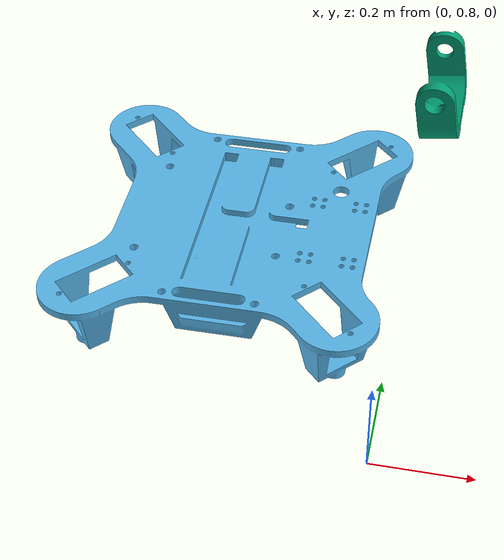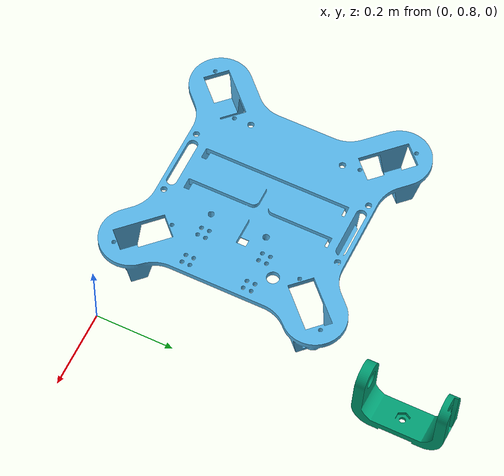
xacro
<?xml version="1.0"?>
<robot xmlns:xacro="http://www.ros.org/wiki/xacro" name="robot_name">
          <link name="world" />

    <joint name="virtual_joint" type="fixed">
            <origin rpy="0 -3.15 0" xyz="0 0 0.3" />

     <parent link="world"/>
     <child link="base"/>
   </joint>

    <link name="base">
        <visual>
            <geometry>
                <mesh filename="package://spider_bot/description/meshes/visual/base.dae" scale="0.0050 0.0050 0.0050" />
            </geometry>
        </visual>
        <collision>
            <geometry>
                <mesh filename="package://spider_bot/description/meshes/collision/base.stl " scale="0.0050 0.0050 0.0050" />
            </geometry>
        </collision>

        <inertial>
            <mass value="0.1" />
            <inertia ixx="0.03" iyy="0.03" izz="0.03" ixy="0.0" ixz="0.0" iyz="0.0" />
        </inertial>

    </link>

     <link name="elbow_link1">
        <visual>
            <geometry>
                <mesh filename="package://spider_bot/description/meshes/visual/elbow.dae" scale="0.0050 0.0050 0.0050" />
            </geometry>
        </visual>
        <collision>
            <geometry>
                <mesh filename="package://spider_bot/description/meshes/collision/elbow.stl " scale="0.0050 0.0050 0.0050" />
            </geometry>
        </collision>

<inertial>
            <mass value="0.1" />
            <inertia ixx="0.03" iyy="0.03" izz="0.03" ixy="0.0" ixz="0.0" iyz="0.0" />
        </inertial>

    </link>

 <joint name="elbow_joint1" type="revolute">
        <origin rpy="0 3 0" xyz="0 1.5 0.1" />
        <parent link="base" />
        <child link="elbow_link1" />
        <axis xyz="0 0 1" />
        <limit effort="87" lower="-2.9671" upper="2.9671" velocity="2.3925" />
    </joint>

</robot>
